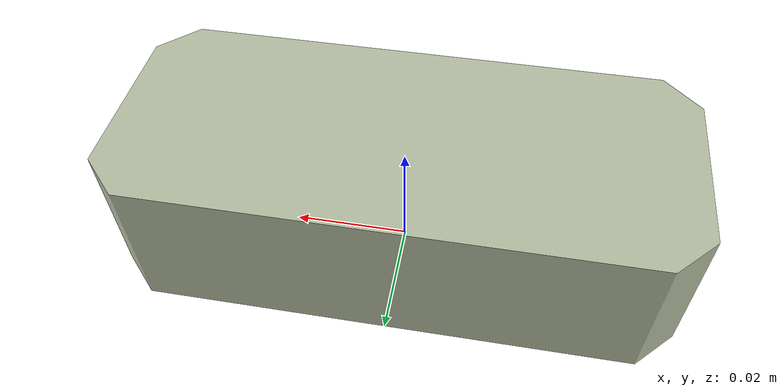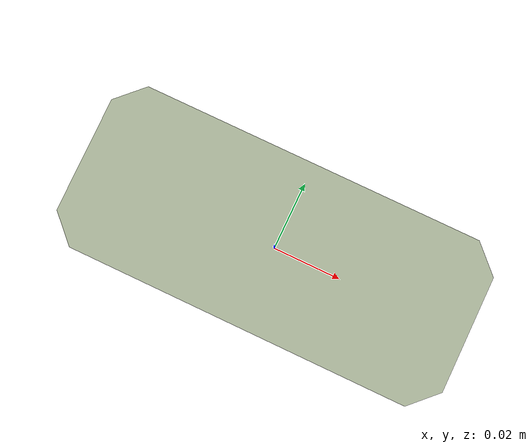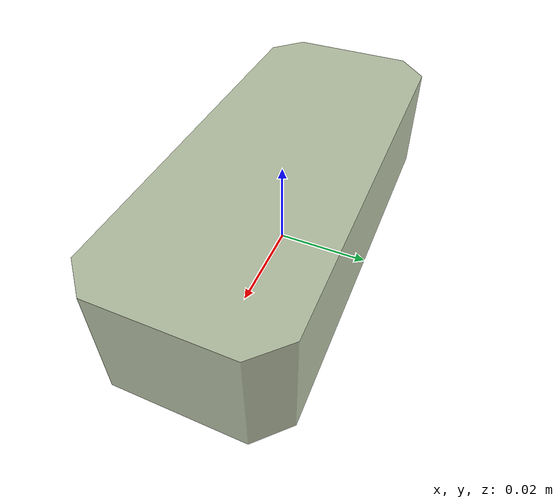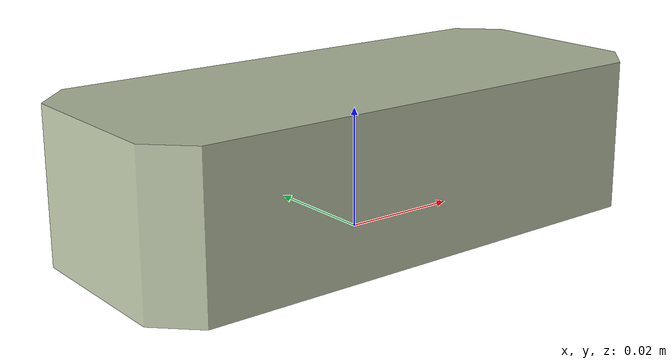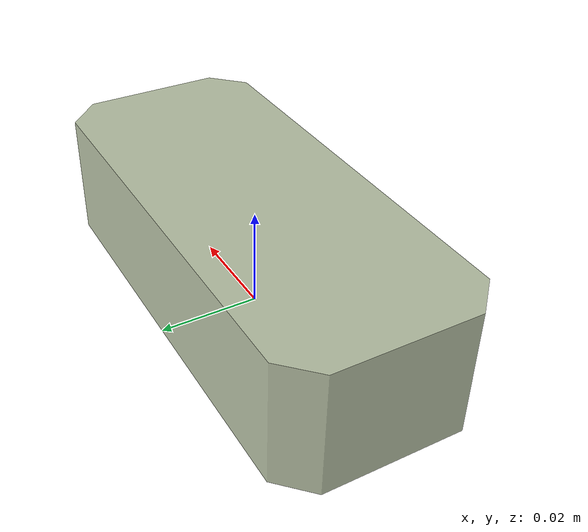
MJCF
<?xml version='1.0' encoding='utf-8'?>
<mujoco model="One-inch support insert | static asset inspection">
  <compiler angle="radian" />
  <visual>
    <global offwidth="1000" offheight="600" />
    <headlight ambient=".4 .4 .4" diffuse=".6 .6 .6" />
  </visual>
  <asset>
    <texture type="skybox" builtin="gradient" rgb1=".92 .95 .97" rgb2=".70 .78 .84" width="512" height="3072" />
    <mesh name="rack24_riser_0" file="meshes/rack24_riser_0.obj" inertia="shell" />
  </asset>
  <worldbody>
    <geom type="mesh" mesh="rack24_riser_0" rgba="0.72 0.76 0.65 1" contype="0" conaffinity="0" density="0" />
  </worldbody>
</mujoco>
